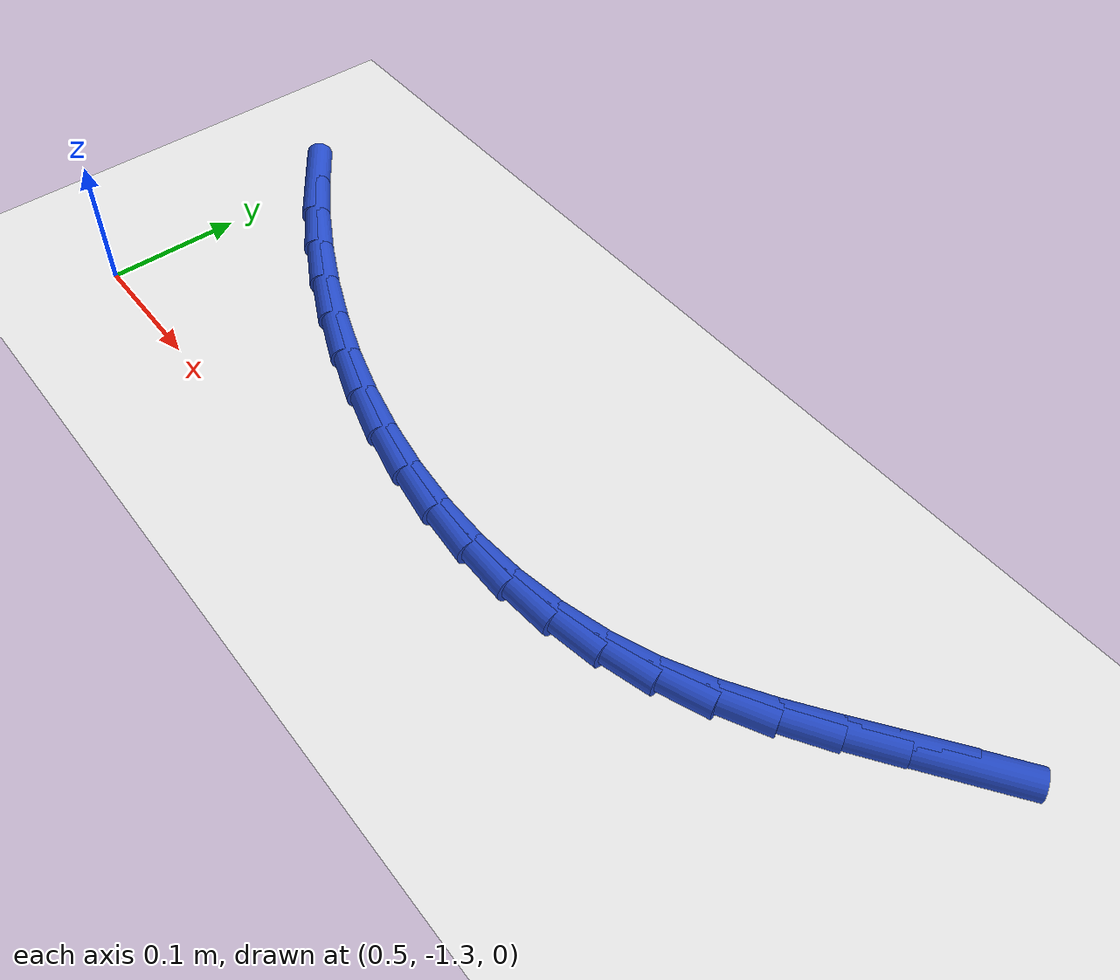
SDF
<sdf version="1.6">
 <world name="default">
  <model name="ground_plane">
   <static>1</static>
   <link name="link">
    <collision name="collision">
     <geometry><plane><normal>0 0 1</normal><size>100 100</size></plane></geometry>
     <surface><friction><ode><mu>100</mu><mu2>50</mu2></ode></friction></surface>
    </collision>
    <visual name="visual">
     <cast_shadows>0</cast_shadows>
     <geometry><plane><normal>0 0 1</normal><size>100 100</size></plane></geometry>
     <material>
      <script><uri>file://media/materials/scripts/gazebo.material</uri><name>Gazebo/WhiteGlow</name></script>
     </material>
    </visual>
   </link>
  </model>
  <model name="line">
   <link name="link_176">
    <pose>1.1602771388347473 -1.1128363903337926 0.01 0 1.57 0.6178101197521496</pose>
    <collision name="collision">
     <geometry><cylinder><radius>0.01</radius><length>0.08</length></cylinder></geometry>
    </collision>
    <visual name="visual">
     <material>
      <script><name>Gazebo/Blue</name><uri>file://media/materials/scripts/gazebo.material</uri></script>
     </material>
     <geometry><cylinder><radius>0.01</radius><length>0.08</length></cylinder></geometry>
    </visual>
   </link>
   <link name="link_177">
    <pose>1.130872718735954 -1.1337314116052506 0.01 0 1.57 0.6292373605812567</pose>
    <collision name="collision">
     <geometry><cylinder><radius>0.01</radius><length>0.08</length></cylinder></geometry>
    </collision>
    <visual name="visual">
     <material>
      <script><name>Gazebo/Blue</name><uri>file://media/materials/scripts/gazebo.material</uri></script>
     </material>
     <geometry><cylinder><radius>0.01</radius><length>0.08</length></cylinder></geometry>
    </visual>
   </link>
   <link name="link_178">
    <pose>1.1017214234760742 -1.1549520186689934 0.01 0 1.57 0.6101765754944892</pose>
    <collision name="collision">
     <geometry><cylinder><radius>0.01</radius><length>0.08</length></cylinder></geometry>
    </collision>
    <visual name="visual">
     <material>
      <script><name>Gazebo/Blue</name><uri>file://media/materials/scripts/gazebo.material</uri></script>
     </material>
     <geometry><cylinder><radius>0.01</radius><length>0.08</length></cylinder></geometry>
    </visual>
   </link>
   <link name="link_179">
    <pose>1.0723671394710688 -1.1754759976001656 0.01 0 1.57 0.5597191191781383</pose>
    <collision name="collision">
     <geometry><cylinder><radius>0.01</radius><length>0.08</length></cylinder></geometry>
    </collision>
    <visual name="visual">
     <material>
      <script><name>Gazebo/Blue</name><uri>file://media/materials/scripts/gazebo.material</uri></script>
     </material>
     <geometry><cylinder><radius>0.01</radius><length>0.08</length></cylinder></geometry>
    </visual>
   </link>
   <link name="link_180">
    <pose>1.0423537531369023 -1.1942811344739128 0.01 0 1.57 0.4764516971261851</pose>
    <collision name="collision">
     <geometry><cylinder><radius>0.01</radius><length>0.08</length></cylinder></geometry>
    </collision>
    <visual name="visual">
     <material>
      <script><name>Gazebo/Blue</name><uri>file://media/materials/scripts/gazebo.material</uri></script>
     </material>
     <geometry><cylinder><radius>0.01</radius><length>0.08</length></cylinder></geometry>
    </visual>
   </link>
   <link name="link_181">
    <pose>1.0112258774242484 -1.2103465150717465 0.01 0 1.57 0.37027362237726874</pose>
    <collision name="collision">
     <geometry><cylinder><radius>0.01</radius><length>0.08</length></cylinder></geometry>
    </collision>
    <visual name="visual">
     <material>
      <script><name>Gazebo/Blue</name><uri>file://media/materials/scripts/gazebo.material</uri></script>
     </material>
     <geometry><cylinder><radius>0.01</radius><length>0.08</length></cylinder></geometry>
    </visual>
   </link>
   <link name="link_182">
    <pose>0.9787062701329585 -1.222969910560289 0.01 0 1.57 0.2662612173894109</pose>
    <collision name="collision">
     <geometry><cylinder><radius>0.01</radius><length>0.08</length></cylinder></geometry>
    </collision>
    <visual name="visual">
     <material>
      <script><name>Gazebo/Blue</name><uri>file://media/materials/scripts/gazebo.material</uri></script>
     </material>
     <geometry><cylinder><radius>0.01</radius><length>0.08</length></cylinder></geometry>
    </visual>
   </link>
   <link name="link_183">
    <pose>0.9449277073591285 -1.2321825785877811 0.01 0 1.57 0.16872441184221998</pose>
    <collision name="collision">
     <geometry><cylinder><radius>0.01</radius><length>0.08</length></cylinder></geometry>
    </collision>
    <visual name="visual">
     <material>
      <script><name>Gazebo/Blue</name><uri>file://media/materials/scripts/gazebo.material</uri></script>
     </material>
     <geometry><cylinder><radius>0.01</radius><length>0.08</length></cylinder></geometry>
    </visual>
   </link>
   <link name="link_184">
    <pose>0.910080442585667 -1.2381185987658077 0.01 0 1.57 0.07803286442752505</pose>
    <collision name="collision">
     <geometry><cylinder><radius>0.01</radius><length>0.08</length></cylinder></geometry>
    </collision>
    <visual name="visual">
     <material>
      <script><name>Gazebo/Blue</name><uri>file://media/materials/scripts/gazebo.material</uri></script>
     </material>
     <geometry><cylinder><radius>0.01</radius><length>0.08</length></cylinder></geometry>
    </visual>
   </link>
   <link name="link_185">
    <pose>0.8743547292954845 -1.2409120507059512 0.01 0 1.57 -0.005905276210070171</pose>
    <collision name="collision">
     <geometry><cylinder><radius>0.01</radius><length>0.08</length></cylinder></geometry>
    </collision>
    <visual name="visual">
     <material>
      <script><name>Gazebo/Blue</name><uri>file://media/materials/scripts/gazebo.material</uri></script>
     </material>
     <geometry><cylinder><radius>0.01</radius><length>0.08</length></cylinder></geometry>
    </visual>
   </link>
   <link name="link_186">
    <pose>0.8379408209714903 -1.240697014019797 0.01 0 1.57 -0.08350331052244163</pose>
    <collision name="collision">
     <geometry><cylinder><radius>0.01</radius><length>0.08</length></cylinder></geometry>
    </collision>
    <visual name="visual">
     <material>
      <script><name>Gazebo/Blue</name><uri>file://media/materials/scripts/gazebo.material</uri></script>
     </material>
     <geometry><cylinder><radius>0.01</radius><length>0.08</length></cylinder></geometry>
    </visual>
   </link>
   <link name="link_187">
    <pose>0.8010289710965939 -1.2376075683189298 0.01 0 1.57 -0.15536973262764484</pose>
    <collision name="collision">
     <geometry><cylinder><radius>0.01</radius><length>0.08</length></cylinder></geometry>
    </collision>
    <visual name="visual">
     <material>
      <script><name>Gazebo/Blue</name><uri>file://media/materials/scripts/gazebo.material</uri></script>
     </material>
     <geometry><cylinder><radius>0.01</radius><length>0.08</length></cylinder></geometry>
    </visual>
   </link>
   <link name="link_188">
    <pose>0.7638094331537034 -1.2317777932149325 0.01 0 1.57 -0.2222117533505384</pose>
    <collision name="collision">
     <geometry><cylinder><radius>0.01</radius><length>0.08</length></cylinder></geometry>
    </collision>
    <visual name="visual">
     <material>
      <script><name>Gazebo/Blue</name><uri>file://media/materials/scripts/gazebo.material</uri></script>
     </material>
     <geometry><cylinder><radius>0.01</radius><length>0.08</length></cylinder></geometry>
    </visual>
   </link>
   <link name="link_189">
    <pose>0.7264724606257299 -1.2233417683193903 0.01 0 1.57 -0.28477032119685425</pose>
    <collision name="collision">
     <geometry><cylinder><radius>0.01</radius><length>0.08</length></cylinder></geometry>
    </collision>
    <visual name="visual">
     <material>
      <script><name>Gazebo/Blue</name><uri>file://media/materials/scripts/gazebo.material</uri></script>
     </material>
     <geometry><cylinder><radius>0.01</radius><length>0.08</length></cylinder></geometry>
    </visual>
   </link>
   <link name="link_190">
    <pose>0.6892083069955826 -1.2124335732438871 0.01 0 1.57 -0.3437814847668214</pose>
    <collision name="collision">
     <geometry><cylinder><radius>0.01</radius><length>0.08</length></cylinder></geometry>
    </collision>
    <visual name="visual">
     <material>
      <script><name>Gazebo/Blue</name><uri>file://media/materials/scripts/gazebo.material</uri></script>
     </material>
     <geometry><cylinder><radius>0.01</radius><length>0.08</length></cylinder></geometry>
    </visual>
   </link>
   <link name="link_191">
    <pose>0.6522072257461707 -1.1991872876000074 0.01 0 1.57 -0.39995713707086733</pose>
    <collision name="collision">
     <geometry><cylinder><radius>0.01</radius><length>0.08</length></cylinder></geometry>
    </collision>
    <visual name="visual">
     <material>
      <script><name>Gazebo/Blue</name><uri>file://media/materials/scripts/gazebo.material</uri></script>
     </material>
     <geometry><cylinder><radius>0.01</radius><length>0.08</length></cylinder></geometry>
    </visual>
   </link>
   <link name="link_192">
    <pose>0.6156594703604026 -1.1837369909993354 0.01 0 1.57 -0.4539788867136888</pose>
    <collision name="collision">
     <geometry><cylinder><radius>0.01</radius><length>0.08</length></cylinder></geometry>
    </collision>
    <visual name="visual">
     <material>
      <script><name>Gazebo/Blue</name><uri>file://media/materials/scripts/gazebo.material</uri></script>
     </material>
     <geometry><cylinder><radius>0.01</radius><length>0.08</length></cylinder></geometry>
    </visual>
   </link>
   <link name="link_193">
    <pose>0.5797552943211893 -1.1662167630534546 0.01 0 1.57 -0.5065003187884385</pose>
    <collision name="collision">
     <geometry><cylinder><radius>0.01</radius><length>0.08</length></cylinder></geometry>
    </collision>
    <visual name="visual">
     <material>
      <script><name>Gazebo/Blue</name><uri>file://media/materials/scripts/gazebo.material</uri></script>
     </material>
     <geometry><cylinder><radius>0.01</radius><length>0.08</length></cylinder></geometry>
    </visual>
   </link>
   <link name="link_194">
    <pose>0.54468495111144 -1.1467606833739505 0.01 0 1.57 -0.5581544033683417</pose>
    <collision name="collision">
     <geometry><cylinder><radius>0.01</radius><length>0.08</length></cylinder></geometry>
    </collision>
    <visual name="visual">
     <material>
      <script><name>Gazebo/Blue</name><uri>file://media/materials/scripts/gazebo.material</uri></script>
     </material>
     <geometry><cylinder><radius>0.01</radius><length>0.08</length></cylinder></geometry>
    </visual>
   </link>
   <link name="link_195">
    <pose>0.5106386942140635 -1.125502831572406 0.01 0 1.57 -0.609563978536418</pose>
    <collision name="collision">
     <geometry><cylinder><radius>0.01</radius><length>0.08</length></cylinder></geometry>
    </collision>
    <visual name="visual">
     <material>
      <script><name>Gazebo/Blue</name><uri>file://media/materials/scripts/gazebo.material</uri></script>
     </material>
     <geometry><cylinder><radius>0.01</radius><length>0.08</length></cylinder></geometry>
    </visual>
   </link>
  </model>
 </world>
</sdf>
